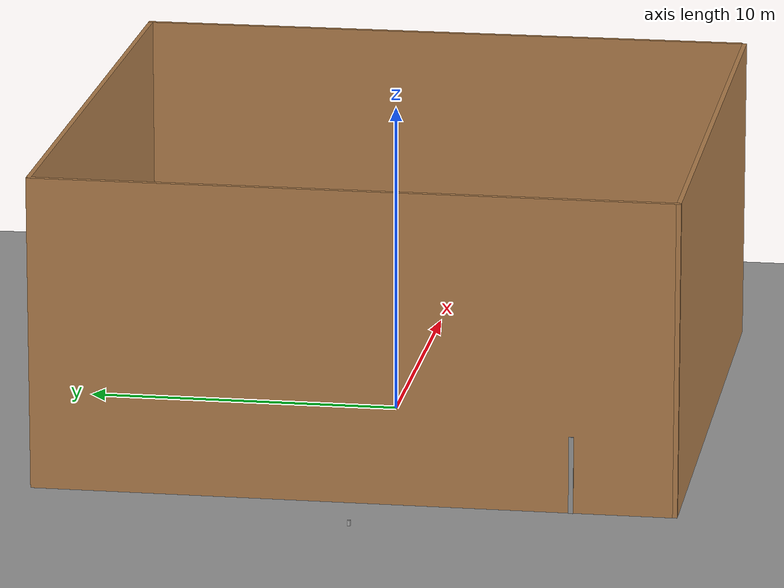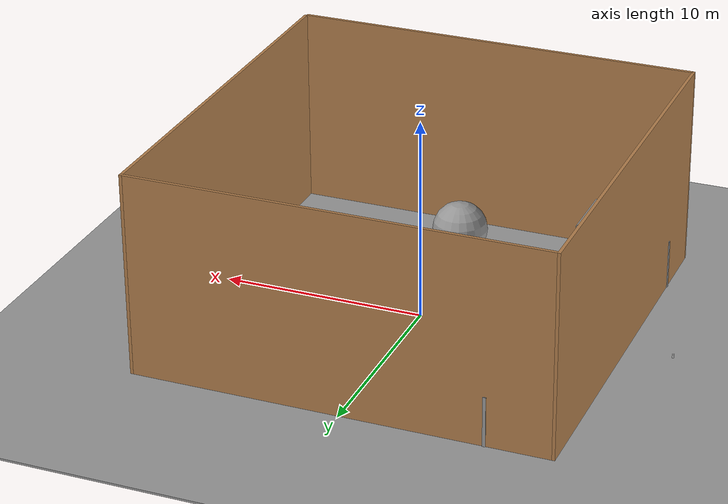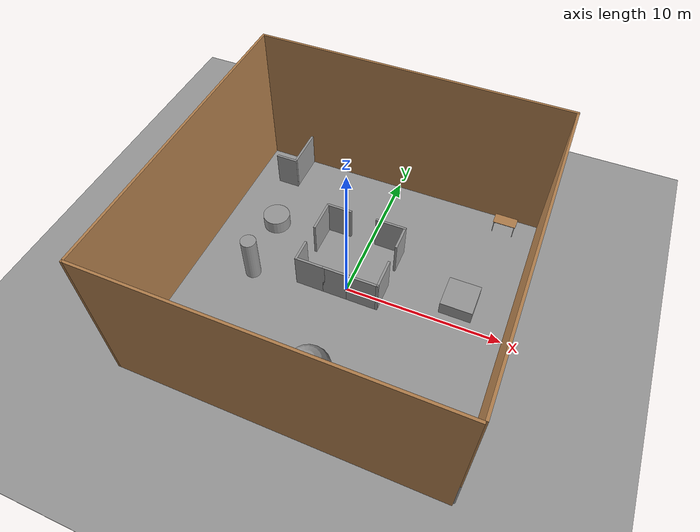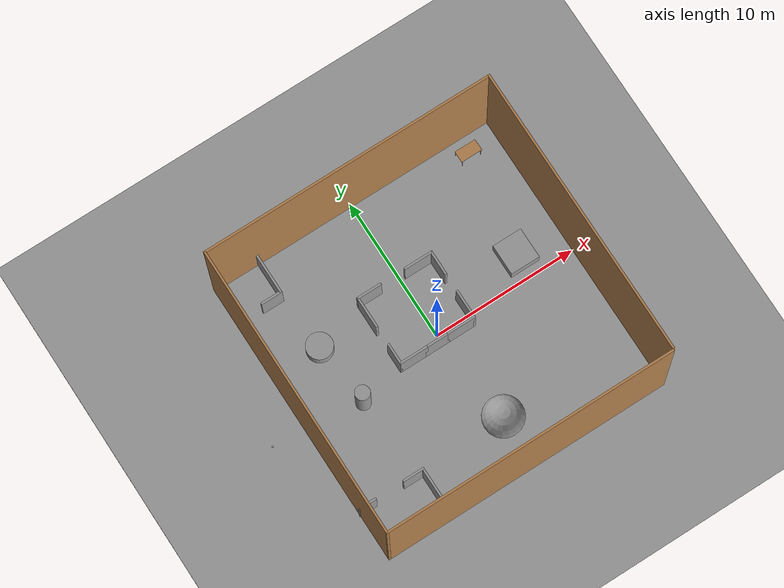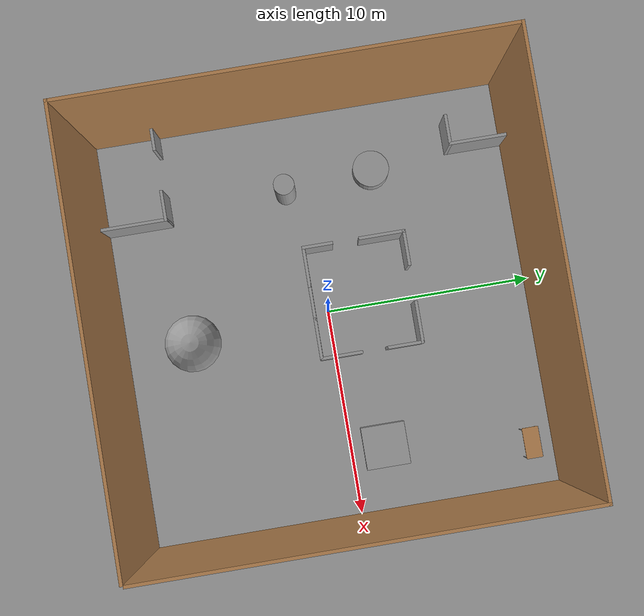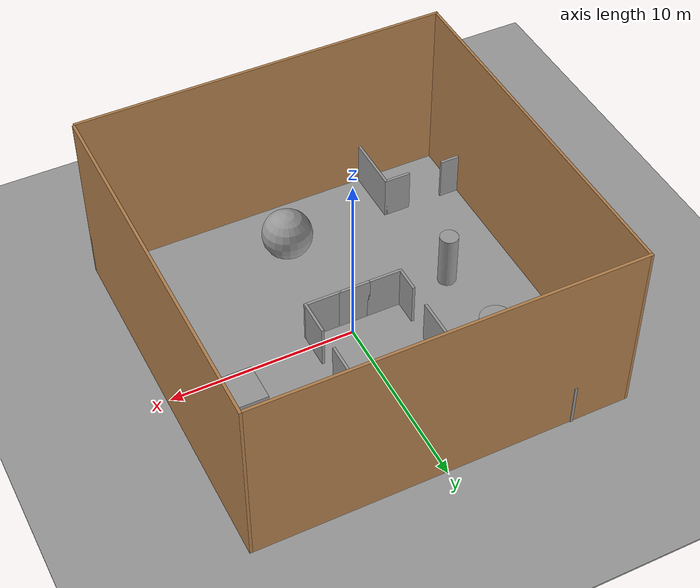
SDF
<sdf version="1.7">
 <world name="default">
  <light name="sun" type="directional">
   <pose>0 0 10 0 -0 0</pose>
   <diffuse>0.8 0.8 0.8 1</diffuse>
   <specular>0.2 0.2 0.2 1</specular>
   <attenuation>
    <range>1000</range>
    <constant>0.9</constant>
    <linear>0.01</linear>
    <quadratic>0.001</quadratic>
   </attenuation>
   <direction>-0.5 0.1 -0.9</direction>
   <spot><inner_angle>0</inner_angle><outer_angle>0</outer_angle><falloff>0</falloff></spot>
  </light>
  <model name="ground_plane">
   <static>1</static>
   <link name="link">
    <collision name="collision">
     <geometry><plane><normal>0 0 1</normal><size>100 100</size></plane></geometry>
     <surface><friction><ode><mu>100</mu><mu2>50</mu2></ode></friction></surface>
    </collision>
    <visual name="visual">
     <cast_shadows>0</cast_shadows>
     <geometry><plane><normal>0 0 1</normal><size>100 100</size></plane></geometry>
     <material>
      <script><uri>file://media/materials/scripts/gazebo.material</uri><name>Gazebo/Grey</name></script>
     </material>
    </visual>
   </link>
  </model>
  <gravity>0 0 -9.8</gravity>
  <magnetic_field>6e-06 2.3e-05 -4.2e-05</magnetic_field>
  <atmosphere type="adiabatic"/>
  <physics type="ode">
   <max_step_size>0.005</max_step_size>
   <real_time_factor>1</real_time_factor>
   <real_time_update_rate>1000</real_time_update_rate>
  </physics>
  <scene><ambient>0.4 0.4 0.4 1</ambient><background>0.7 0.7 0.7 1</background><shadows>1</shadows></scene>
  <spherical_coordinates>
   <surface_model>EARTH_WGS84</surface_model>
   <latitude_deg>0</latitude_deg>
   <longitude_deg>0</longitude_deg>
   <elevation>0</elevation>
   <heading_deg>0</heading_deg>
  </spherical_coordinates>
  <model name="ground_plane_0">
   <static>1</static>
   <link name="link">
    <collision name="collision">
     <geometry><plane><normal>0 0 1</normal><size>100 100</size></plane></geometry>
     <surface><friction><ode><mu>100</mu><mu2>50</mu2></ode></friction></surface>
    </collision>
    <visual name="visual">
     <cast_shadows>0</cast_shadows>
     <geometry><plane><normal>0 0 1</normal><size>100 100</size></plane></geometry>
     <material>
      <script><uri>file://media/materials/scripts/gazebo.material</uri><name>Gazebo/Grey</name></script>
     </material>
    </visual>
   </link>
   <pose>4.46962 1.05622 0 0 -0 0</pose>
  </model>
  <model name="Untitled">
   <pose>0.04821 -0.110166 0 0 -0 0</pose>
   <link name="Wall_1">
    <collision name="Wall_1_Collision">
     <geometry><box><size>20.15 0.15 10</size></box></geometry>
     <pose>0 0 5 0 -0 0</pose>
    </collision>
    <visual name="Wall_1_Visual">
     <pose>0 0 5 0 -0 0</pose>
     <geometry><box><size>20.15 0.15 10</size></box></geometry>
     <material>
      <script><uri>file://media/materials/scripts/gazebo.material</uri><name>Gazebo/Wood</name></script>
      <ambient>0.996078 0.47451 0.0196078 1</ambient>
     </material>
     <meta><layer>0</layer></meta>
    </visual>
    <pose>-10.0291 -0.021425 0 0 -0 1.5708</pose>
   </link>
   <link name="Wall_10">
    <collision name="Wall_10_Collision">
     <geometry><box><size>1.5 0.15 2.5</size></box></geometry>
     <pose>0 0 1.25 0 -0 0</pose>
    </collision>
    <visual name="Wall_10_Visual">
     <pose>0 0 1.25 0 -0 0</pose>
     <geometry><box><size>1.5 0.15 2.5</size></box></geometry>
     <material>
      <script><uri>file://media/materials/scripts/gazebo.material</uri><name>Gazebo/Grey</name></script>
      <ambient>1 1 1 1</ambient>
     </material>
     <meta><layer>0</layer></meta>
    </visual>
    <pose>-7.55532 7.17143 0 0 -0 3.14159</pose>
   </link>
   <link name="Wall_13">
    <collision name="Wall_13_Collision">
     <geometry><box><size>1.25 0.15 2.5</size></box></geometry>
     <pose>0 0 1.25 0 -0 0</pose>
    </collision>
    <visual name="Wall_13_Visual">
     <pose>0 0 1.25 0 -0 0</pose>
     <geometry><box><size>1.25 0.15 2.5</size></box></geometry>
     <material>
      <script><uri>file://media/materials/scripts/gazebo.material</uri><name>Gazebo/Grey</name></script>
      <ambient>1 1 1 1</ambient>
     </material>
     <meta><layer>0</layer></meta>
    </visual>
    <pose>-9.52091 -6.81783 0 0 -0 0</pose>
   </link>
   <link name="Wall_15">
    <collision name="Wall_15_Collision">
     <geometry><box><size>1.5 0.15 2.5</size></box></geometry>
     <pose>0 0 1.25 0 -0 0</pose>
    </collision>
    <visual name="Wall_15_Visual">
     <pose>0 0 1.25 0 -0 0</pose>
     <geometry><box><size>1.5 0.15 2.5</size></box></geometry>
     <material>
      <script><uri>file://media/materials/scripts/gazebo.material</uri><name>Gazebo/Grey</name></script>
      <ambient>1 1 1 1</ambient>
     </material>
     <meta><layer>0</layer></meta>
    </visual>
    <pose>-6.19591 -6.81783 0 0 -0 0</pose>
   </link>
   <link name="Wall_16">
    <collision name="Wall_16_Collision">
     <geometry><box><size>3.25 0.15 2.5</size></box></geometry>
     <pose>0 0 1.25 0 -0 0</pose>
    </collision>
    <visual name="Wall_16_Visual">
     <pose>0 0 1.25 0 -0 0</pose>
     <geometry><box><size>3.25 0.15 2.5</size></box></geometry>
     <material>
      <script><uri>file://media/materials/scripts/gazebo.material</uri><name>Gazebo/Grey</name></script>
      <ambient>1 1 1 1</ambient>
     </material>
     <meta><layer>0</layer></meta>
    </visual>
    <pose>-5.52091 -8.36783 0 0 -0 -1.5708</pose>
   </link>
   <link name="Wall_26">
    <collision name="Wall_26_Collision">
     <geometry><box><size>2.25 0.15 2.5</size></box></geometry>
     <pose>0 0 1.25 0 -0 0</pose>
    </collision>
    <visual name="Wall_26_Visual">
     <pose>0 0 1.25 0 -0 0</pose>
     <geometry><box><size>2.25 0.15 2.5</size></box></geometry>
     <material>
      <script><uri>file://media/materials/scripts/gazebo.material</uri><name>Gazebo/Grey</name></script>
      <ambient>1 1 1 1</ambient>
     </material>
     <meta><layer>0</layer></meta>
    </visual>
    <pose>-3.11255 3.217 0 0 -0 -1.5708</pose>
   </link>
   <link name="Wall_28">
    <collision name="Wall_28_Collision">
     <geometry><box><size>1.5 0.15 2.5</size></box></geometry>
     <pose>0 0 1.25 0 -0 0</pose>
    </collision>
    <visual name="Wall_28_Visual">
     <pose>0 0 1.25 0 -0 0</pose>
     <geometry><box><size>1.5 0.15 2.5</size></box></geometry>
     <material>
      <script><uri>file://media/materials/scripts/gazebo.material</uri><name>Gazebo/Grey</name></script>
      <ambient>1 1 1 1</ambient>
     </material>
     <meta><layer>0</layer></meta>
    </visual>
    <pose>-3.11255 0.092003 0 0 -0 -1.5708</pose>
   </link>
   <link name="Wall_3">
    <collision name="Wall_3_Collision">
     <geometry><box><size>20.15 0.15 10</size></box></geometry>
     <pose>0 0 5 0 -0 0</pose>
    </collision>
    <visual name="Wall_3_Visual">
     <pose>0 0 5 0 -0 0</pose>
     <geometry><box><size>20.15 0.15 10</size></box></geometry>
     <material>
      <script><uri>file://media/materials/scripts/gazebo.material</uri><name>Gazebo/Wood</name></script>
      <ambient>0.921569 0.807843 0.615686 1</ambient>
     </material>
     <meta><layer>0</layer></meta>
    </visual>
    <pose>-0.029093 -10.0214 0 0 -0 0</pose>
   </link>
   <link name="Wall_30">
    <collision name="Wall_30_Collision">
     <geometry><box><size>2 0.15 2.5</size></box></geometry>
     <pose>0 0 1.25 0 -0 0</pose>
    </collision>
    <visual name="Wall_30_Visual">
     <pose>0 0 1.25 0 -0 0</pose>
     <geometry><box><size>2 0.15 2.5</size></box></geometry>
     <material>
      <script><uri>file://media/materials/scripts/gazebo.material</uri><name>Gazebo/Grey</name></script>
      <ambient>1 1 1 1</ambient>
     </material>
     <meta><layer>0</layer></meta>
    </visual>
    <pose>-2.18755 -0.582997 0 0 -0 0</pose>
   </link>
   <link name="Wall_31">
    <collision name="Wall_31_Collision">
     <geometry><box><size>1.75 0.15 2.5</size></box></geometry>
     <pose>0 0 1.25 0 -0 0</pose>
    </collision>
    <visual name="Wall_31_Visual">
     <pose>0 0 1.25 0 -0 0</pose>
     <geometry><box><size>1.75 0.15 2.5</size></box></geometry>
     <material>
      <script><uri>file://media/materials/scripts/gazebo.material</uri><name>Gazebo/Grey</name></script>
      <ambient>1 1 1 1</ambient>
     </material>
     <meta><layer>0</layer></meta>
    </visual>
    <pose>-0.462549 -0.582997 0 0 -0 0</pose>
   </link>
   <link name="Wall_32">
    <collision name="Wall_32_Collision">
     <geometry><box><size>2.05 0.15 2.5</size></box></geometry>
     <pose>0 0 1.25 0 -0 0</pose>
    </collision>
    <visual name="Wall_32_Visual">
     <pose>0 0 1.25 0 -0 0</pose>
     <geometry><box><size>2.05 0.15 2.5</size></box></geometry>
     <material>
      <script><uri>file://media/materials/scripts/gazebo.material</uri><name>Gazebo/Grey</name></script>
      <ambient>1 1 1 1</ambient>
     </material>
     <meta><layer>0</layer></meta>
    </visual>
    <pose>1.28745 -0.582997 0 0 -0 0</pose>
   </link>
   <link name="Wall_34">
    <collision name="Wall_34_Collision">
     <geometry><box><size>1.75 0.15 2.5</size></box></geometry>
     <pose>0 0 1.25 0 -0 0</pose>
    </collision>
    <visual name="Wall_34_Visual">
     <pose>0 0 1.25 0 -0 0</pose>
     <geometry><box><size>1.75 0.15 2.5</size></box></geometry>
     <material>
      <script><uri>file://media/materials/scripts/gazebo.material</uri><name>Gazebo/Grey</name></script>
      <ambient>1 1 1 1</ambient>
     </material>
     <meta><layer>0</layer></meta>
    </visual>
    <pose>-2.31255 4.267 0 0 -0 0</pose>
   </link>
   <link name="Wall_36">
    <collision name="Wall_36_Collision">
     <geometry><box><size>2.05 0.15 2.5</size></box></geometry>
     <pose>0 0 1.25 0 -0 0</pose>
    </collision>
    <visual name="Wall_36_Visual">
     <pose>0 0 1.25 0 -0 0</pose>
     <geometry><box><size>2.05 0.15 2.5</size></box></geometry>
     <material>
      <script><uri>file://media/materials/scripts/gazebo.material</uri><name>Gazebo/Grey</name></script>
      <ambient>1 1 1 1</ambient>
     </material>
     <meta><layer>0</layer></meta>
    </visual>
    <pose>1.28745 4.267 0 0 -0 0</pose>
   </link>
   <link name="Wall_38">
    <collision name="Wall_38_Collision">
     <geometry><box><size>1.75 0.15 2.5</size></box></geometry>
     <pose>0 0 1.25 0 -0 0</pose>
    </collision>
    <visual name="Wall_38_Visual">
     <pose>0 0 1.25 0 -0 0</pose>
     <geometry><box><size>1.75 0.15 2.5</size></box></geometry>
     <material>
      <script><uri>file://media/materials/scripts/gazebo.material</uri><name>Gazebo/Grey</name></script>
      <ambient>1 1 1 1</ambient>
     </material>
     <meta><layer>0</layer></meta>
    </visual>
    <pose>2.23745 3.467 0 0 -0 -1.5708</pose>
   </link>
   <link name="Wall_40">
    <collision name="Wall_40_Collision">
     <geometry><box><size>2.05 0.15 2.5</size></box></geometry>
     <pose>0 0 1.25 0 -0 0</pose>
    </collision>
    <visual name="Wall_40_Visual">
     <pose>0 0 1.25 0 -0 0</pose>
     <geometry><box><size>2.05 0.15 2.5</size></box></geometry>
     <material>
      <script><uri>file://media/materials/scripts/gazebo.material</uri><name>Gazebo/Grey</name></script>
      <ambient>1 1 1 1</ambient>
     </material>
     <meta><layer>0</layer></meta>
    </visual>
    <pose>2.23745 0.367003 0 0 -0 -1.5708</pose>
   </link>
   <link name="Wall_5">
    <collision name="Wall_5_Collision">
     <geometry><box><size>20.25 0.15 10</size></box></geometry>
     <pose>0 0 5 0 -0 0</pose>
    </collision>
    <visual name="Wall_5_Visual">
     <pose>0 0 5 0 -0 0</pose>
     <geometry><box><size>20.25 0.15 10</size></box></geometry>
     <material>
      <script><uri>file://media/materials/scripts/gazebo.material</uri><name>Gazebo/Wood</name></script>
      <ambient>1 1 1 1</ambient>
     </material>
     <meta><layer>0</layer></meta>
    </visual>
    <pose>0.020907 9.97857 0 0 -0 0</pose>
   </link>
   <link name="Wall_6">
    <collision name="Wall_6_Collision">
     <geometry><box><size>20 0.15 10</size></box></geometry>
     <pose>0 0 5 0 -0 0</pose>
    </collision>
    <visual name="Wall_6_Visual">
     <pose>0 0 5 0 -0 0</pose>
     <geometry><box><size>20 0.15 10</size></box></geometry>
     <material>
      <script><uri>file://media/materials/scripts/gazebo.material</uri><name>Gazebo/Wood</name></script>
      <ambient>1 0.764706 0.305882 1</ambient>
     </material>
     <meta><layer>0</layer></meta>
    </visual>
    <pose>10.0709 0.053575 0 0 -0 -1.5708</pose>
   </link>
   <link name="Wall_7">
    <collision name="Wall_7_Collision">
     <geometry><box><size>0.15 0.15 2.5</size></box></geometry>
     <pose>0 0 1.25 0 -0 0</pose>
    </collision>
    <visual name="Wall_7_Visual">
     <pose>0 0 1.25 0 -0 0</pose>
     <geometry><box><size>0.15 0.15 2.5</size></box></geometry>
     <material>
      <script><uri>file://media/materials/scripts/gazebo.material</uri><name>Gazebo/Grey</name></script>
      <ambient>1 1 1 1</ambient>
     </material>
     <meta><layer>0</layer></meta>
    </visual>
    <pose>10.0709 -9.87143 0 0 -0 0</pose>
   </link>
   <link name="Wall_9">
    <collision name="Wall_9_Collision">
     <geometry><box><size>3 0.15 2.5</size></box></geometry>
     <pose>0 0 1.25 0 -0 0</pose>
    </collision>
    <visual name="Wall_9_Visual">
     <pose>0 0 1.25 0 -0 0</pose>
     <geometry><box><size>3 0.15 2.5</size></box></geometry>
     <material>
      <script><uri>file://media/materials/scripts/gazebo.material</uri><name>Gazebo/Grey</name></script>
      <ambient>1 1 1 1</ambient>
     </material>
     <meta><layer>0</layer></meta>
    </visual>
    <pose>-6.88032 8.59643 0 0 -0 -1.5708</pose>
   </link>
   <static>1</static>
  </model>
  <model name="beer">
   <link name="link">
    <pose>0 0 0.115 0 -0 0</pose>
    <inertial>
     <mass>0.39</mass>
     <inertia><ixx>0.00058</ixx><ixy>0</ixy><ixz>0</ixz><iyy>0.00058</iyy><iyz>0</iyz><izz>0.00019</izz></inertia>
    </inertial>
    <collision name="collision">
     <geometry><cylinder><radius>0.055</radius><length>0.23</length></cylinder></geometry>
    </collision>
    <visual name="visual">
     <geometry><cylinder><radius>0.055</radius><length>0.23</length></cylinder></geometry>
     <material>
      <script>
       <uri>model://beer/materials/scripts</uri>
       <uri>model://beer/materials/textures</uri>
       <name>Beer/Diffuse</name>
      </script>
     </material>
    </visual>
   </link>
   <pose>-12.2663 -0.402891 -0.000195 3e-06 -0 0</pose>
  </model>
  <model name="table">
   <static>1</static>
   <link name="link">
    <collision name="surface">
     <pose>0 0 1 0 -0 0</pose>
     <geometry><box><size>1.5 0.8 0.03</size></box></geometry>
     <surface><friction><ode><mu>0.6</mu><mu2>0.6</mu2></ode></friction></surface>
    </collision>
    <visual name="visual1">
     <pose>0 0 1 0 -0 0</pose>
     <geometry><box><size>1.5 0.8 0.03</size></box></geometry>
     <material>
      <script><uri>file://media/materials/scripts/gazebo.material</uri><name>Gazebo/Wood</name></script>
     </material>
    </visual>
    <collision name="front_left_leg">
     <pose>0.68 0.38 0.5 0 -0 0</pose>
     <geometry><cylinder><radius>0.02</radius><length>1</length></cylinder></geometry>
    </collision>
    <visual name="front_left_leg">
     <pose>0.68 0.38 0.5 0 -0 0</pose>
     <geometry><cylinder><radius>0.02</radius><length>1</length></cylinder></geometry>
     <material>
      <script><uri>file://media/materials/scripts/gazebo.material</uri><name>Gazebo/Grey</name></script>
     </material>
    </visual>
    <collision name="front_right_leg">
     <pose>0.68 -0.38 0.5 0 -0 0</pose>
     <geometry><cylinder><radius>0.02</radius><length>1</length></cylinder></geometry>
    </collision>
    <visual name="front_right_leg">
     <pose>0.68 -0.38 0.5 0 -0 0</pose>
     <geometry><cylinder><radius>0.02</radius><length>1</length></cylinder></geometry>
     <material>
      <script><uri>file://media/materials/scripts/gazebo.material</uri><name>Gazebo/Grey</name></script>
     </material>
    </visual>
    <collision name="back_right_leg">
     <pose>-0.68 -0.38 0.5 0 -0 0</pose>
     <geometry><cylinder><radius>0.02</radius><length>1</length></cylinder></geometry>
    </collision>
    <visual name="back_right_leg">
     <pose>-0.68 -0.38 0.5 0 -0 0</pose>
     <geometry><cylinder><radius>0.02</radius><length>1</length></cylinder></geometry>
     <material>
      <script><uri>file://media/materials/scripts/gazebo.material</uri><name>Gazebo/Grey</name></script>
     </material>
    </visual>
    <collision name="back_left_leg">
     <pose>-0.68 0.38 0.5 0 -0 0</pose>
     <geometry><cylinder><radius>0.02</radius><length>1</length></cylinder></geometry>
    </collision>
    <visual name="back_left_leg">
     <pose>-0.68 0.38 0.5 0 -0 0</pose>
     <geometry><cylinder><radius>0.02</radius><length>1</length></cylinder></geometry>
     <material>
      <script><uri>file://media/materials/scripts/gazebo.material</uri><name>Gazebo/Grey</name></script>
     </material>
    </visual>
   </link>
   <pose>7.94807 8.67111 0 0 -0 0</pose>
  </model>
  <model name="unit_box">
   <pose>6.92048 1.65346 0.49924 0 -0.000741 -6e-06</pose>
   <link name="link">
    <inertial>
     <mass>1</mass>
     <inertia>
      <ixx>0.166667</ixx>
      <ixy>0</ixy>
      <ixz>0</ixz>
      <iyy>0.166667</iyy>
      <iyz>0</iyz>
      <izz>0.166667</izz>
     </inertia>
    </inertial>
    <collision name="collision"><geometry><box><size>2.05426 2.1351 1</size></box></geometry></collision>
    <visual name="visual">
     <geometry><box><size>2.05426 2.1351 1</size></box></geometry>
     <material>
      <script><name>Gazebo/Grey</name><uri>file://media/materials/scripts/gazebo.material</uri></script>
     </material>
    </visual>
   </link>
  </model>
  <model name="unit_sphere">
   <pose>0.521015 -6.69767 1.36805 0 -0 0</pose>
   <link name="link">
    <inertial>
     <mass>1</mass>
     <inertia><ixx>0.1</ixx><ixy>0</ixy><ixz>0</ixz><iyy>0.1</iyy><iyz>0</iyz><izz>0.1</izz></inertia>
    </inertial>
    <collision name="collision"><geometry><sphere><radius>1.36825</radius></sphere></geometry></collision>
    <visual name="visual">
     <geometry><sphere><radius>1.36825</radius></sphere></geometry>
     <material>
      <script><name>Gazebo/Grey</name><uri>file://media/materials/scripts/gazebo.material</uri></script>
     </material>
    </visual>
   </link>
  </model>
  <model name="unit_cylinder">
   <pose>-6.08497 -1.10413 1.58814 4e-06 -3e-06 0.001471</pose>
   <link name="link">
    <inertial>
     <mass>1</mass>
     <inertia><ixx>0.145833</ixx><ixy>0</ixy><ixz>0</ixz><iyy>0.145833</iyy><iyz>0</iyz><izz>0.125</izz></inertia>
    </inertial>
    <collision name="collision">
     <geometry><cylinder><radius>0.5</radius><length>3.17675</length></cylinder></geometry>
    </collision>
    <visual name="visual">
     <geometry><cylinder><radius>0.5</radius><length>3.17675</length></cylinder></geometry>
     <material>
      <script><name>Gazebo/Grey</name><uri>file://media/materials/scripts/gazebo.material</uri></script>
     </material>
    </visual>
   </link>
  </model>
  <model name="unit_cylinder_0">
   <pose>-6.5236 3.20806 0.499902 0.00011 -0.00011 -2e-06</pose>
   <link name="link">
    <inertial>
     <mass>1</mass>
     <inertia><ixx>0.145833</ixx><ixy>0</ixy><ixz>0</ixz><iyy>0.145833</iyy><iyz>0</iyz><izz>0.125</izz></inertia>
    </inertial>
    <collision name="collision">
     <geometry><cylinder><radius>0.890685</radius><length>1</length></cylinder></geometry>
    </collision>
    <visual name="visual">
     <geometry><cylinder><radius>0.890685</radius><length>1</length></cylinder></geometry>
     <material>
      <script><name>Gazebo/Grey</name><uri>file://media/materials/scripts/gazebo.material</uri></script>
     </material>
    </visual>
   </link>
  </model>
 </world>
</sdf>
